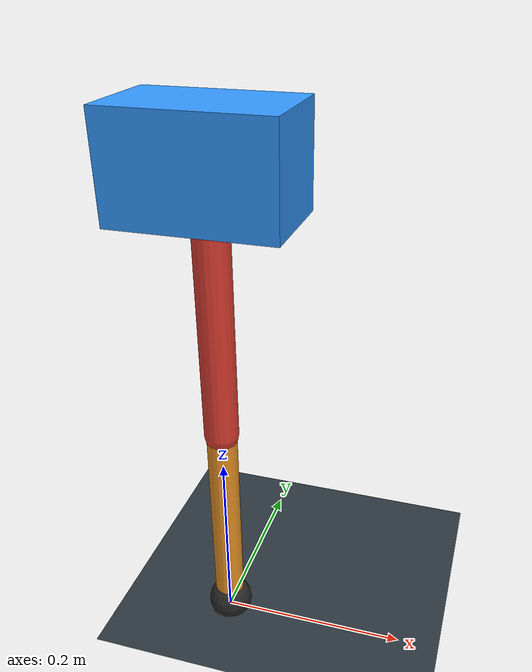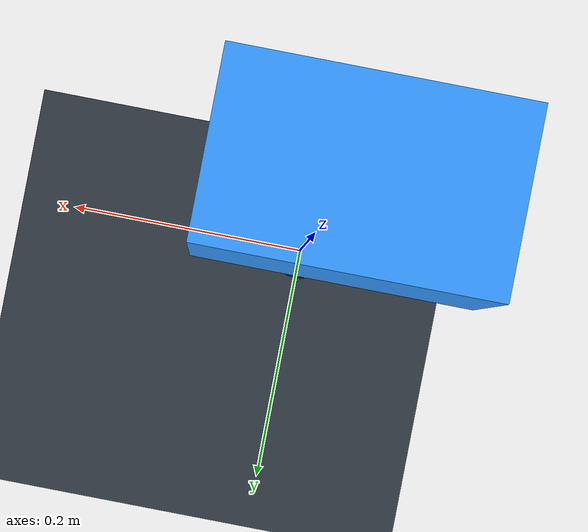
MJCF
<mujoco model="single_axis_two_bar">
  <compiler angle="radian" inertiafromgeom="true"/>
  <option timestep="0.001" integrator="implicitfast" gravity="0 0 -9.81"/>
  <default>
    <joint damping="0.08"/>
    <geom friction="1.2 0.01 0.0001" condim="3"/>
  </default>
  <worldbody>
    <geom name="floor" type="plane" size="5 5 0.1" rgba="0.18 0.22 0.25 1"/>
    <body name="carriage" pos="0 0 0.5178279531798604">
      <joint name="pole_slide" type="slide" axis="0 0 1"/>
      <geom name="payload" type="box" size="0.08 0.05 0.05" mass="2.3630481563180004" rgba="0.2 0.6 1 1"/>
      <body name="thigh" pos="0 0 0">
        <joint name="hip" type="hinge" axis="0 1 0"/>
        <geom name="thigh_link" type="capsule" fromto="0 0 0 0 0 -0.2769729153586784" size="0.018" mass="0.19734686206723012" rgba="0.9 0.25 0.2 1"/>
        <body name="shank" pos="0 0 -0.2769729153586784">
          <joint name="knee" type="hinge" axis="0 1 0"/>
          <geom name="shank_link" type="capsule" fromto="0 0 0 0 0 -0.2310971394659199" size="0.016" mass="0.16465976554874484" rgba="0.95 0.6 0.15 1"/>
          <geom name="foot" type="sphere" pos="0 0 -0.2310971394659199" size="0.025" mass="0.03" rgba="0.15 0.15 0.15 1"/>
          <site name="toe" pos="0 0 -0.2310971394659199" size="0.008"/>
        </body>
      </body>
    </body>
  </worldbody>
  <actuator>
    <motor name="hip_motor" joint="hip" ctrlrange="-23.462530789136114 23.462530789136114"/>
    <motor name="knee_motor" joint="knee" ctrlrange="-96.87257105093043 96.87257105093043"/>
  </actuator>
</mujoco>
